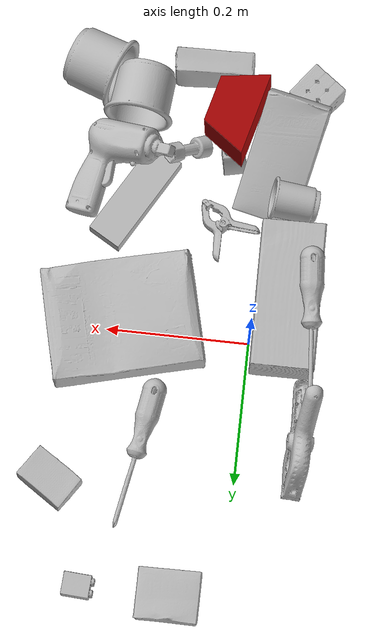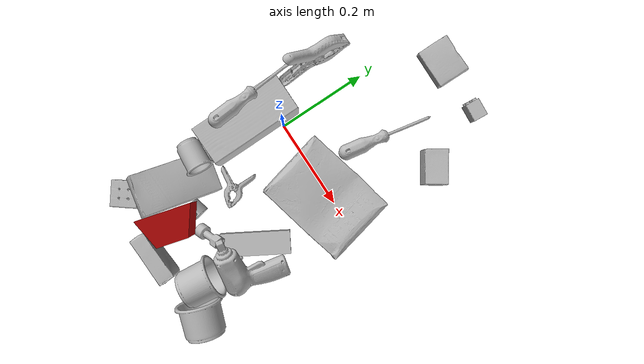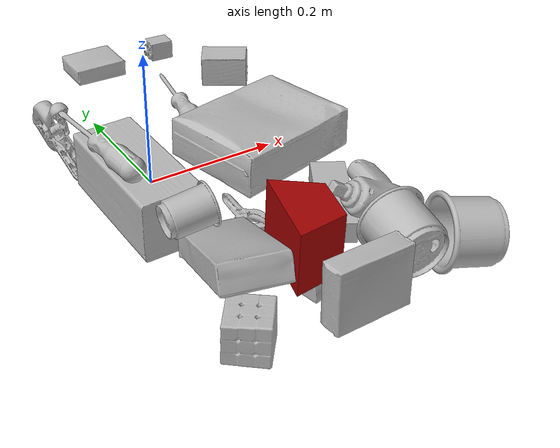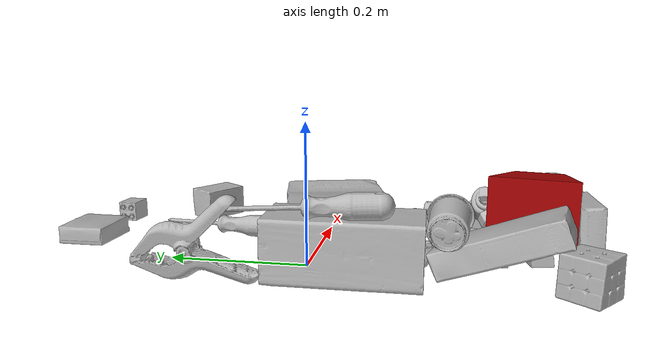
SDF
<sdf version="1.4">
  <world name="default">
    <light name="light1" type="point">
      <pose>0 0 1 0 0 0</pose>
      <diffuse>3 3 3 1</diffuse>
      <specular>3 3 3 1</specular>
    </light>
    <light name="light2" type="point">
      <pose>0 0.5 2 0 0 0</pose>
      <diffuse>1 1 1 1</diffuse>
      <specular>1 1 1 1</specular>
    </light>
    <light name="light3" type="point">
      <pose>0 0.5 2 0 0 0</pose>
      <diffuse>3 3 3 1</diffuse>
      <specular>3 3 3 1</specular>
    </light>
    <scene>
      <ambient>0.7 0.7 0.7</ambient>
    </scene>
    <model name="box21">
      <link name="link_box21">
        <collision name="default">
          <geometry>
            <mesh>
              <uri>model://cracker_box/collision_meshes/collision.obj</uri>
              <scale>1.0 1.0 1.0</scale>
            </mesh>
          </geometry>
          <surface>
            <friction>
              <ode>
                <mu>0.5</mu>
                <mu2>0.5</mu2>
              </ode>
            </friction>
          <contact>
        <ode>
            <max_vel>0</max_vel>
            <min_depth>0.0001</min_depth>
            <kp>1e8</kp>
        </ode>
    </contact></surface>
        </collision>
        <visual name="default">
          <geometry>
            <mesh>
              <uri>model://cracker_box/visual_meshes/visual.dae</uri>
              <scale>1.0 1.0 1.0</scale>
            </mesh>
          </geometry>
        </visual>
        <inertial>
          <mass>3.1344146728515625</mass>
          <pose>0.0009464123286306858 0.00025434247800149024 -0.0017029535956680775 -0.0003162077429326042 -0.011106488668875016 0.0025467950024750923</pose>
          <inertia>
            <ixx>0.0079725515</ixx>
            <iyy>0.01316425</iyy>
            <izz>0.01878659</izz>
            <ixy>0</ixy>
            <ixz>0</ixz>
            <iyz>0</iyz>
          </inertia>
        </inertial>
      </link>
      <pose>0.17780070006847382 -0.012089116498827934 0.036384113132953644 -0.01405105392341247 -0.005016038437482307 -2.905712579680884</pose>
    </model>
    <model name="box22">
      <link name="link_box22">
        <collision name="default">
          <geometry>
            <mesh>
              <uri>model://jenga/collision_meshes/collision.obj</uri>
              <scale>1.0 1.0 1.0</scale>
            </mesh>
          </geometry>
          <surface>
            <friction>
              <ode>
                <mu>0.5</mu>
                <mu2>0.5</mu2>
              </ode>
            </friction>
          <contact>
        <ode>
            <max_vel>0</max_vel>
            <min_depth>0.0001</min_depth>
            <kp>1e8</kp>
        </ode>
    </contact></surface>
        </collision>
        <visual name="default">
          <geometry>
            <mesh>
              <uri>model://jenga/visual_meshes/visual.dae</uri>
              <scale>1.0 1.0 1.0</scale>
            </mesh>
          </geometry>
        </visual>
        <inertial>
          <mass>0.23869852721691132</mass>
          <pose>-2.502855807051674e-07 -0.0001025000965455547 -4.092339804628864e-05 0.0 -7.34215461761844e-07 0.0</pose>
          <inertia>
            <ixx>6.605367e-05</ixx>
            <iyy>0.00044757788</iyy>
            <izz>0.00047782745</izz>
            <ixy>0</ixy>
            <ixz>0</ixz>
            <iyz>0</iyz>
          </inertia>
        </inertial>
      </link>
      <pose>0.1794826090335846 -0.18997903168201447 0.01499995868653059 3.1415810776422037 -2.6077516887671333e-07 1.044047596668298</pose>
    </model>
    <model name="box23">
      <link name="link_box23">
        <collision name="default">
          <geometry>
            <mesh>
              <uri>model://rubiks_cube/collision_meshes/collision.obj</uri>
              <scale>1.0 1.0 1.0</scale>
            </mesh>
          </geometry>
          <surface>
            <friction>
              <ode>
                <mu>0.5</mu>
                <mu2>0.5</mu2>
              </ode>
            </friction>
          <contact>
        <ode>
            <max_vel>0</max_vel>
            <min_depth>0.0001</min_depth>
            <kp>1e8</kp>
        </ode>
    </contact></surface>
        </collision>
        <visual name="default">
          <geometry>
            <mesh>
              <uri>model://rubiks_cube/visual_meshes/visual.dae</uri>
              <scale>1.0 1.0 1.0</scale>
            </mesh>
          </geometry>
        </visual>
        <inertial>
          <mass>0.26229962706565857</mass>
          <pose>2.6721041649580002e-05 5.2569666877388954e-05 -7.264316082000732e-06 -0.05467189873579491 -0.09814109048128683 -0.0344550730209751</pose>
          <inertia>
            <ixx>0.00014493814</ixx>
            <iyy>0.00014426222</iyy>
            <izz>0.00014613918</izz>
            <ixy>0</ixy>
            <ixz>0</ixz>
            <iyz>0</iyz>
          </inertia>
        </inertial>
      </link>
      <pose>-0.06003713235259056 -0.35962072014808655 0.02867996320128441 1.485827086492824e-05 2.43469559342262e-05 2.482101856896452</pose>
    </model>
    <model name="cup1">
      <link name="link_cup1">
        <collision name="default">
          <geometry>
            <mesh>
              <uri>model://j_cups/collision_meshes/collision.obj</uri>
              <scale>1.0 1.0 1.0</scale>
            </mesh>
          </geometry>
          <surface>
            <friction>
              <ode>
                <mu>0.5</mu>
                <mu2>0.5</mu2>
              </ode>
            </friction>
          <contact>
        <ode>
            <max_vel>0</max_vel>
            <min_depth>0.0001</min_depth>
            <kp>1e8</kp>
        </ode>
    </contact></surface>
        </collision>
        <visual name="default">
          <geometry>
            <mesh>
              <uri>model://j_cups/visual_meshes/visual.dae</uri>
              <scale>1.0 1.0 1.0</scale>
            </mesh>
          </geometry>
        </visual>
        <inertial>
          <mass>0.10388943552970886</mass>
          <pose>0.0006164857186377048 0.0005398984649218619 -0.0013479008339345455 0.03030360356214998 0.03758024855654077 0.43868424196936845</pose>
          <inertia>
            <ixx>0.00015254253</ixx>
            <iyy>0.0001541288</iyy>
            <izz>0.00017584988</izz>
            <ixy>0</ixy>
            <ixz>0</ixz>
            <iyz>0</iyz>
          </inertia>
        </inertial>
      </link>
      <pose>0.24953052401542664 -0.3680797517299652 0.047107864171266556 1.4519617275659962 0.3050498419777299 -1.9646543666539105</pose>
    </model>
    <model name="cup2">
      <link name="link_cup2">
        <collision name="default">
          <geometry>
            <mesh>
              <uri>model://i_cups/collision_meshes/collision.obj</uri>
              <scale>1.0 1.0 1.0</scale>
            </mesh>
          </geometry>
          <surface>
            <friction>
              <ode>
                <mu>0.5</mu>
                <mu2>0.5</mu2>
              </ode>
            </friction>
          <contact>
        <ode>
            <max_vel>0</max_vel>
            <min_depth>0.0001</min_depth>
            <kp>1e8</kp>
        </ode>
    </contact></surface>
        </collision>
        <visual name="default">
          <geometry>
            <mesh>
              <uri>model://i_cups/visual_meshes/visual.dae</uri>
              <scale>1.0 1.0 1.0</scale>
            </mesh>
          </geometry>
        </visual>
        <inertial>
          <mass>0.057485051453113556</mass>
          <pose>0.00011239853483857587 0.00016797262651380152 -0.000857901235576719 -0.028982969026390082 -0.03987335468246028 -0.34591562504163004</pose>
          <inertia>
            <ixx>7.958892e-05</ixx>
            <iyy>8.029015e-05</iyy>
            <izz>8.8953486e-05</izz>
            <ixy>0</ixy>
            <ixz>0</ixz>
            <iyz>0</iyz>
          </inertia>
        </inertial>
      </link>
      <pose>0.184040829539299 -0.33265766501426697 0.04494462162256241 1.4364116894363328 0.3798123669227798 2.9835599253584313</pose>
    </model>
    <model name="box11">
      <link name="link_box11">
        <collision name="default">
          <geometry>
            <mesh>
              <uri>model://wood_block/collision_meshes/collision.obj</uri>
              <scale>1.0 1.0 1.0</scale>
            </mesh>
          </geometry>
          <surface>
            <friction>
              <ode>
                <mu>0.5</mu>
                <mu2>0.5</mu2>
              </ode>
            </friction>
          <contact>
        <ode>
            <max_vel>0</max_vel>
            <min_depth>0.0001</min_depth>
            <kp>1e8</kp>
        </ode>
    </contact></surface>
        </collision>
        <visual name="default">
          <geometry>
            <mesh>
              <uri>model://wood_block/visual_meshes/visual.dae</uri>
              <scale>1.0 1.0 1.0</scale>
            </mesh>
          </geometry>
        </visual>
        <inertial>
          <mass>2.2218124866485596</mass>
          <pose>-5.813315510749817e-06 -0.000570809468626976 0.0002640858292579651 -0.052211005792275555 -0.005192694700552194 -0.006861375481739596</pose>
          <inertia>
            <ixx>0.0029731211</ixx>
            <iyy>0.009392092</iyy>
            <izz>0.009356961</izz>
            <ixy>0</ixy>
            <ixz>0</ixz>
            <iyz>0</iyz>
          </inertia>
        </inertial>
      </link>
      <pose>-0.04768189787864685 -0.06016038730740547 0.04570067673921585 1.5681281765745059 -0.006939117914231143 1.5887784583945976</pose>
    </model>
    <model name="box12">
      <link name="link_box12">
        <collision name="default">
          <geometry>
            <mesh>
              <uri>model://sugar_box/collision_meshes/collision.obj</uri>
              <scale>1.0 1.0 1.0</scale>
            </mesh>
          </geometry>
          <surface>
            <friction>
              <ode>
                <mu>0.5</mu>
                <mu2>0.5</mu2>
              </ode>
            </friction>
          <contact>
        <ode>
            <max_vel>0</max_vel>
            <min_depth>0.0001</min_depth>
            <kp>1e8</kp>
        </ode>
    </contact></surface>
        </collision>
        <visual name="default">
          <geometry>
            <mesh>
              <uri>model://sugar_box/visual_meshes/visual.dae</uri>
              <scale>1.0 1.0 1.0</scale>
            </mesh>
          </geometry>
        </visual>
        <inertial>
          <mass>1.0162616968154907</mass>
          <pose>0.0010343727190047503 3.849109634757042e-05 -0.00036364805418998003 -0.0004046261550277283 0.0010506634055573133 0.0026153787890220875</pose>
          <inertia>
            <ixx>0.00084674655</ixx>
            <iyy>0.002736858</iyy>
            <izz>0.0032763465</izz>
            <ixy>0</ixy>
            <ixz>0</ixz>
            <iyz>0</iyz>
          </inertia>
        </inertial>
      </link>
      <pose>-0.02014821395277977 -0.25949862599372864 0.05171488597989082 0.018986704454794515 0.37663260347350214 1.353814740694031</pose>
    </model>
    <model name="box13">
      <link name="link_box13">
        <collision name="default">
          <geometry>
            <mesh>
              <uri>model://pudding_box/collision_meshes/collision.obj</uri>
              <scale>1.0 1.0 1.0</scale>
            </mesh>
          </geometry>
          <surface>
            <friction>
              <ode>
                <mu>0.5</mu>
                <mu2>0.5</mu2>
              </ode>
            </friction>
          <contact>
        <ode>
            <max_vel>0</max_vel>
            <min_depth>0.0001</min_depth>
            <kp>1e8</kp>
        </ode>
    </contact></surface>
        </collision>
        <visual name="default">
          <geometry>
            <mesh>
              <uri>model://pudding_box/visual_meshes/visual.dae</uri>
              <scale>1.0 1.0 1.0</scale>
            </mesh>
          </geometry>
        </visual>
        <inertial>
          <mass>0.24922829866409302</mass>
          <pose>0.0004894822486676276 0.0008067885646596551 -0.0005188828217796981 0.005213100397381839 -0.006603797317439846 0.02007982889363753</pose>
          <inertia>
            <ixx>0.00028173975</ixx>
            <iyy>0.00018955652</iyy>
            <izz>0.0004160624</izz>
            <ixy>0</ixy>
            <ixz>0</ixz>
            <iyz>0</iyz>
          </inertia>
        </inertial>
      </link>
      <pose>0.08665768802165985 -0.3800896406173706 0.045177754014730453 -0.41078552852317574 1.5494355445188202 -1.9481035497399608</pose>
    </model>
    <model name="box14">
      <link name="link_box14">
        <collision name="default">
          <geometry>
            <mesh>
              <uri>model://gelatin_box/collision_meshes/collision.obj</uri>
              <scale>1.0 1.0 1.0</scale>
            </mesh>
          </geometry>
          <surface>
            <friction>
              <ode>
                <mu>0.5</mu>
                <mu2>0.5</mu2>
              </ode>
            </friction>
          <contact>
        <ode>
            <max_vel>0</max_vel>
            <min_depth>0.0001</min_depth>
            <kp>1e8</kp>
        </ode>
    </contact></surface>
        </collision>
        <visual name="default">
          <geometry>
            <mesh>
              <uri>model://gelatin_box/visual_meshes/visual.dae</uri>
              <scale>1.0 1.0 1.0</scale>
            </mesh>
          </geometry>
        </visual>
        <inertial>
          <mass>0.21856601536273956</mass>
          <pose>0.0004319618456065655 0.00011156871914863586 -0.00036403213744051754 -0.001050372093012012 -0.00475581868936722 0.016440559471878533</pose>
          <inertia>
            <ixx>0.00015428978</ixx>
            <iyy>0.000110208384</iyy>
            <izz>0.00023486343</izz>
            <ixy>0</ixy>
            <ixz>0</ixz>
            <iyz>0</iyz>
          </inertia>
        </inertial>
      </link>
      <pose>0.07431790232658386 0.36298075318336487 0.01516831573098898 0.005597491890017275 -0.007304585367047753 1.5640631199738768</pose>
    </model>
    <model name="cup15">
      <link name="link_cup15">
        <collision name="default">
          <geometry>
            <mesh>
              <uri>model://b_cups/collision_meshes/collision.obj</uri>
              <scale>1.0 1.0 1.0</scale>
            </mesh>
          </geometry>
          <surface>
            <friction>
              <ode>
                <mu>0.5</mu>
                <mu2>0.5</mu2>
              </ode>
            </friction>
          <contact>
        <ode>
            <max_vel>0</max_vel>
            <min_depth>0.0001</min_depth>
            <kp>1e8</kp>
        </ode>
    </contact></surface>
        </collision>
        <visual name="default">
          <geometry>
            <mesh>
              <uri>model://b_cups/visual_meshes/visual.dae</uri>
              <scale>1.0 1.0 1.0</scale>
            </mesh>
          </geometry>
        </visual>
        <inertial>
          <mass>0.04691024869680405</mass>
          <pose>0.0005182002787478268 0.0018058588029816747 -0.0013381802709773183 0.1135631498080702 0.03872518969029637 -0.3456955043116969</pose>
          <inertia>
            <ixx>3.0706047e-05</ixx>
            <iyy>3.012308e-05</iyy>
            <izz>2.5838557e-05</izz>
            <ixy>0</ixy>
            <ixz>0</ixz>
            <iyz>0</iyz>
          </inertia>
        </inertial>
      </link>
      <pose>-0.043496787548065186 -0.19142667949199677 0.07893812656402588 1.4297212195755697 -0.21576852192392038 1.5275402001578198</pose>
    </model>
    <model name="toy1">
      <link name="link_toy1">
        <collision name="default">
          <geometry>
            <mesh>
              <uri>model://e_lego_duplo/collision_meshes/collision.obj</uri>
              <scale>1.0 1.0 1.0</scale>
            </mesh>
          </geometry>
          <surface>
            <friction>
              <ode>
                <mu>0.5</mu>
                <mu2>0.5</mu2>
              </ode>
            </friction>
          <contact>
        <ode>
            <max_vel>0</max_vel>
            <min_depth>0.0001</min_depth>
            <kp>1e8</kp>
        </ode>
    </contact></surface>
        </collision>
        <visual name="default">
          <geometry>
            <mesh>
              <uri>model://e_lego_duplo/visual_meshes/visual.dae</uri>
              <scale>1.0 1.0 1.0</scale>
            </mesh>
          </geometry>
        </visual>
        <inertial>
          <mass>0.06732096523046494</mass>
          <pose>0.000325604691170156 0.00023485434940084815 0.001952146296389401 -0.02256754688519212 -6.825533823954374e-05 -0.007625149208872714</pose>
          <inertia>
            <ixx>1.40386455e-05</ixx>
            <iyy>5.761822e-05</iyy>
            <izz>5.6108554e-05</izz>
            <ixy>0</ixy>
            <ixz>0</ixz>
            <iyz>0</iyz>
          </inertia>
        </inertial>
      </link>
      <pose>0.053266990929841995 -0.2879817485809326 0.021809644997119904 7.97090732744993e-05 -2.5708082847605497e-05 -1.3561524753797416</pose>
    </model>
    <model name="toy2">
      <link name="link_toy2">
        <collision name="default">
          <geometry>
            <mesh>
              <uri>model://c_toy_airplane/collision_meshes/collision.obj</uri>
              <scale>1.0 1.0 1.0</scale>
            </mesh>
          </geometry>
          <surface>
            <friction>
              <ode>
                <mu>0.5</mu>
                <mu2>0.5</mu2>
              </ode>
            </friction>
          <contact>
        <ode>
            <max_vel>0</max_vel>
            <min_depth>0.0001</min_depth>
            <kp>1e8</kp>
        </ode>
    </contact></surface>
        </collision>
        <visual name="default">
          <geometry>
            <mesh>
              <uri>model://c_toy_airplane/visual_meshes/visual.dae</uri>
              <scale>1.0 1.0 1.0</scale>
            </mesh>
          </geometry>
        </visual>
        <inertial>
          <mass>0.036399733275175095</mass>
          <pose>-0.00023024277470540255 -4.4302899482318026e-07 -0.0060805329121649265 -0.006192184726307751 -0.016797944030005924 0.7654593329003626</pose>
          <inertia>
            <ixx>1.6714015e-05</ixx>
            <iyy>1.6666843e-05</iyy>
            <izz>3.9241195e-06</izz>
            <ixy>0</ixy>
            <ixz>0</ixz>
            <iyz>0</iyz>
          </inertia>
        </inertial>
      </link>
      <pose>0.1127614751458168 -0.2621879577636719 0.03002304397523403 0.35998072980901086 0.9533402136782005 0.9026200370233904</pose>
    </model>
    <model name="toy3">
      <link name="link_toy3">
        <collision name="default">
          <geometry>
            <mesh>
              <uri>model://foam_brick/collision_meshes/collision.obj</uri>
              <scale>1.0 1.0 1.0</scale>
            </mesh>
          </geometry>
          <surface>
            <friction>
              <ode>
                <mu>0.5</mu>
                <mu2>0.5</mu2>
              </ode>
            </friction>
          <contact>
        <ode>
            <max_vel>0</max_vel>
            <min_depth>0.0001</min_depth>
            <kp>1e8</kp>
        </ode>
    </contact></surface>
        </collision>
        <visual name="default">
          <geometry>
            <mesh>
              <uri>model://foam_brick/visual_meshes/visual.dae</uri>
              <scale>1.0 1.0 1.0</scale>
            </mesh>
          </geometry>
        </visual>
        <inertial>
          <mass>0.28719362616539</mass>
          <pose>-0.0002522472059354186 0.00034584346576593816 -0.0002532101352699101 -0.2940183114741006 0.017274439707053432 -0.0007449906726392561</pose>
          <inertia>
            <ixx>0.00012545152</ixx>
            <iyy>0.00020028985</iyy>
            <izz>0.00020283528</izz>
            <ixy>0</ixy>
            <ixz>0</ixz>
            <iyz>0</iyz>
          </inertia>
        </inertial>
      </link>
      <pose>0.2533376216888428 0.22060807049274445 0.025496838614344597 3.13250840758293 0.0066072391632322 2.554008849916109</pose>
    </model>
    <model name="toy4">
      <link name="link_toy4">
        <collision name="default">
          <geometry>
            <mesh>
              <uri>model://prism/collision_meshes/collision.obj</uri>
              <scale>1.0 1.0 1.0</scale>
            </mesh>
          </geometry>
          <surface>
            <friction>
              <ode>
                <mu>0.5</mu>
                <mu2>0.5</mu2>
              </ode>
            </friction>
          <contact>
        <ode>
            <max_vel>0</max_vel>
            <min_depth>0.0001</min_depth>
            <kp>1e8</kp>
        </ode>
    </contact></surface>
        </collision>
        <visual name="default">
          <geometry>
            <mesh>
              <uri>model://prism/visual_meshes/visual.dae</uri>
              <scale>1.0 1.0 1.0</scale>
            </mesh>
          </geometry>
        </visual>
        <inertial>
          <mass>0.7170383930206299</mass>
          <pose>-9.85359656624496e-05 -4.96157269935793e-07 -0.0033869098406285048 0.0 0.006559181231804993 0.0</pose>
          <inertia>
            <ixx>0.0006471183</ixx>
            <iyy>0.0007820508</iyy>
            <izz>0.0009579188</izz>
            <ixy>0</ixy>
            <ixz>0</ixz>
            <iyz>0</iyz>
          </inertia>
        </inertial>
      </link>
      <pose>0.05269389599561691 -0.3074478805065155 0.08514456450939178 1.5932801562816368 0.006731310363760653 1.314328637631539</pose>
    </model>
    <model name="toy5">
      <link name="link_toy5">
        <collision name="default">
          <geometry>
            <mesh>
              <uri>model://b_toy_airplane/collision_meshes/collision.obj</uri>
              <scale>1.0 1.0 1.0</scale>
            </mesh>
          </geometry>
          <surface>
            <friction>
              <ode>
                <mu>0.5</mu>
                <mu2>0.5</mu2>
              </ode>
            </friction>
          <contact>
        <ode>
            <max_vel>0</max_vel>
            <min_depth>0.0001</min_depth>
            <kp>1e8</kp>
        </ode>
    </contact></surface>
        </collision>
        <visual name="default">
          <geometry>
            <mesh>
              <uri>model://b_toy_airplane/visual_meshes/visual.dae</uri>
              <scale>1.0 1.0 1.0</scale>
            </mesh>
          </geometry>
        </visual>
        <inertial>
          <mass>0.399619996547699</mass>
          <pose>0.005081363022327423 0.004015584941953421 0.009543066844344139 -0.04001809649421662 -0.04022184162979335 -0.5601502893443677</pose>
          <inertia>
            <ixx>0.0007419019</ixx>
            <iyy>0.00029654545</iyy>
            <izz>0.0009229998</izz>
            <ixy>0</ixy>
            <ixz>0</ixz>
            <iyz>0</iyz>
          </inertia>
        </inertial>
      </link>
      <pose>0.21519610285758972 -0.23791144788265228 0.026295388117432594 0.11799495947282009 -0.5048402995675587 2.892787656416382</pose>
    </model>
    <model name="toy6">
      <link name="link_toy6">
        <collision name="default">
          <geometry>
            <mesh>
              <uri>model://f_lego_duplo/collision_meshes/collision.obj</uri>
              <scale>1.0 1.0 1.0</scale>
            </mesh>
          </geometry>
          <surface>
            <friction>
              <ode>
                <mu>0.5</mu>
                <mu2>0.5</mu2>
              </ode>
            </friction>
          <contact>
        <ode>
            <max_vel>0</max_vel>
            <min_depth>0.0001</min_depth>
            <kp>1e8</kp>
        </ode>
    </contact></surface>
        </collision>
        <visual name="default">
          <geometry>
            <mesh>
              <uri>model://f_lego_duplo/visual_meshes/visual.dae</uri>
              <scale>1.0 1.0 1.0</scale>
            </mesh>
          </geometry>
        </visual>
        <inertial>
          <mass>0.05315950885415077</mass>
          <pose>2.3694145056651905e-05 0.0001339314185315743 0.0018837872194126248 0.029838727868319145 -0.014424898970195728 -0.6756716124708322</pose>
          <inertia>
            <ixx>1.1232896e-05</ixx>
            <iyy>1.1332969e-05</iyy>
            <izz>9.750634e-06</izz>
            <ixy>0</ixy>
            <ixz>0</ixz>
            <iyz>0</iyz>
          </inertia>
        </inertial>
      </link>
      <pose>0.19826054573059082 0.3628132939338684 0.016501979902386665 -1.5707944666266775 3.733930418920584e-06 1.5001341331662243</pose>
    </model>
    <model name="hardware1">
      <link name="link_hardware1">
        <collision name="default">
          <geometry>
            <mesh>
              <uri>model://flat_screwdriver/collision_meshes/collision.obj</uri>
              <scale>1.0 1.0 1.0</scale>
            </mesh>
          </geometry>
          <surface>
            <friction>
              <ode>
                <mu>0.5</mu>
                <mu2>0.5</mu2>
              </ode>
            </friction>
          <contact>
        <ode>
            <max_vel>0</max_vel>
            <min_depth>0.0001</min_depth>
            <kp>1e8</kp>
        </ode>
    </contact></surface>
        </collision>
        <visual name="default">
          <geometry>
            <mesh>
              <uri>model://flat_screwdriver/visual_meshes/visual.dae</uri>
              <scale>1.0 1.0 1.0</scale>
            </mesh>
          </geometry>
        </visual>
        <inertial>
          <mass>0.12191366404294968</mass>
          <pose>-0.0489187091588974 -0.0006576801533810794 -0.0006140916957519948 -0.5614853566550635 -0.0032337267722331534 0.006982277608032515</pose>
          <inertia>
            <ixx>1.4404012e-05</ixx>
            <iyy>0.00018286215</iyy>
            <izz>0.00018277747</izz>
            <ixy>0</ixy>
            <ixz>0</ixz>
            <iyz>0</iyz>
          </inertia>
        </inertial>
      </link>
      <pose>-0.0817389115691185 -0.02050130069255829 0.1039152592420578 2.8673357375224877 0.03475404686760426 1.661648518327353</pose>
    </model>
    <model name="hardware2">
      <link name="link_hardware2">
        <collision name="default">
          <geometry>
            <mesh>
              <uri>model://medium_clamp/collision_meshes/collision.obj</uri>
              <scale>1.0 1.0 1.0</scale>
            </mesh>
          </geometry>
          <surface>
            <friction>
              <ode>
                <mu>0.5</mu>
                <mu2>0.5</mu2>
              </ode>
            </friction>
          <contact>
        <ode>
            <max_vel>0</max_vel>
            <min_depth>0.0001</min_depth>
            <kp>1e8</kp>
        </ode>
    </contact></surface>
        </collision>
        <visual name="default">
          <geometry>
            <mesh>
              <uri>model://medium_clamp/visual_meshes/visual.dae</uri>
              <scale>1.0 1.0 1.0</scale>
            </mesh>
          </geometry>
        </visual>
        <inertial>
          <mass>0.018204163759946823</mass>
          <pose>0.005390994716435671 0.00039532413939014077 -0.0001222158025484532 -0.0012269240735234023 0.0025845026557488396 0.03820772126630794</pose>
          <inertia>
            <ixx>4.959469e-06</ixx>
            <iyy>7.217431e-06</iyy>
            <izz>1.1117007e-05</izz>
            <ixy>0</ixy>
            <ixz>0</ixz>
            <iyz>0</iyz>
          </inertia>
        </inertial>
      </link>
      <pose>0.05338689312338829 -0.16094987094402313 0.013314682058990002 -3.019531862049138 0.07746674305107613 -0.8197548681998397</pose>
    </model>
    <model name="hardware3">
      <link name="link_hardware3">
        <collision name="default">
          <geometry>
            <mesh>
              <uri>model://large_clamp/collision_meshes/collision.obj</uri>
              <scale>1.0 1.0 1.0</scale>
            </mesh>
          </geometry>
          <surface>
            <friction>
              <ode>
                <mu>0.5</mu>
                <mu2>0.5</mu2>
              </ode>
            </friction>
          <contact>
        <ode>
            <max_vel>0</max_vel>
            <min_depth>0.0001</min_depth>
            <kp>1e8</kp>
        </ode>
    </contact></surface>
        </collision>
        <visual name="default">
          <geometry>
            <mesh>
              <uri>model://large_clamp/visual_meshes/visual.dae</uri>
              <scale>1.0 1.0 1.0</scale>
            </mesh>
          </geometry>
        </visual>
        <inertial>
          <mass>0.18972517549991608</mass>
          <pose>0.006369356997311115 0.0003585676895454526 -0.00018398048996459693 -0.002133071569430183 0.00967158655684735 0.02663316926682878</pose>
          <inertia>
            <ixx>0.0001673895</ixx>
            <iyy>0.00031788155</iyy>
            <izz>0.00045985627</izz>
            <ixy>0</ixy>
            <ixz>0</ixz>
            <iyz>0</iyz>
          </inertia>
        </inertial>
      </link>
      <pose>-0.08448711037635803 0.13569168746471405 0.04480844736099243 -1.7185284145536135 0.19615482939339227 1.522049862419181</pose>
    </model>
    <model name="hardware4">
      <link name="link_hardware4">
        <collision name="default">
          <geometry>
            <mesh>
              <uri>model://phillips_screwdriver/collision_meshes/collision.obj</uri>
              <scale>1.0 1.0 1.0</scale>
            </mesh>
          </geometry>
          <surface>
            <friction>
              <ode>
                <mu>0.5</mu>
                <mu2>0.5</mu2>
              </ode>
            </friction>
          <contact>
        <ode>
            <max_vel>0</max_vel>
            <min_depth>0.0001</min_depth>
            <kp>1e8</kp>
        </ode>
    </contact></surface>
        </collision>
        <visual name="default">
          <geometry>
            <mesh>
              <uri>model://phillips_screwdriver/visual_meshes/visual.dae</uri>
              <scale>1.0 1.0 1.0</scale>
            </mesh>
          </geometry>
        </visual>
        <inertial>
          <mass>0.10424148291349411</mass>
          <pose>-0.047771818935871124 0.0010362300090491772 -0.000455554953077808 -0.15717568897110376 0.005850990280187748 -0.0021567475529960492</pose>
          <inertia>
            <ixx>1.2247306e-05</ixx>
            <iyy>0.00015355984</iyy>
            <izz>0.00015369034</izz>
            <ixy>0</ixy>
            <ixz>0</ixz>
            <iyz>0</iyz>
          </inertia>
        </inertial>
      </link>
      <pose>0.1393987238407135 0.16872245073318481 0.014107847586274147 1.4171672763448475 0.03266081309752663 1.3861503363242007</pose>
    </model>
  <physics type="ode">
      <max_contacts>50</max_contacts>
      <ode>
        <solver>
          <type>quick</type>
          <iters>75</iters>
        </solver>
        <constraints>
          <contact_max_correcting_vel>0</contact_max_correcting_vel>
          <contact_surface_layer>0</contact_surface_layer>
        </constraints>
      </ode>
    </physics></world>
</sdf>
